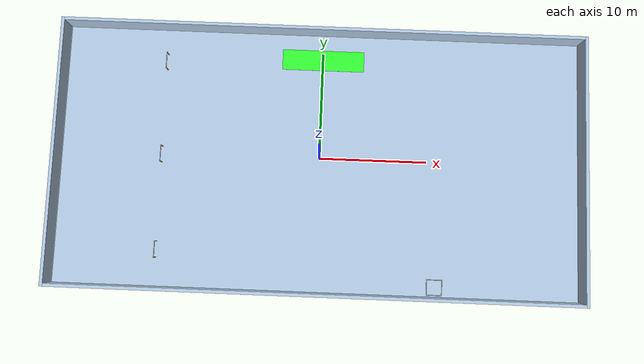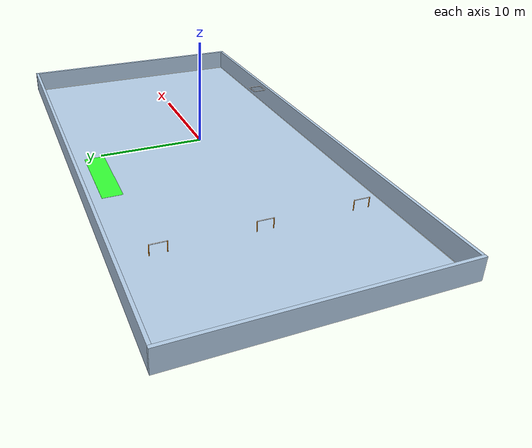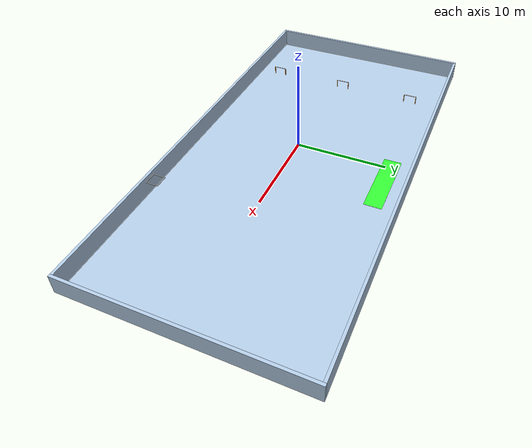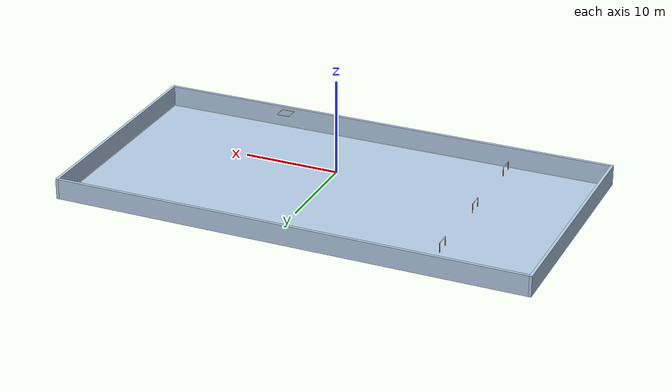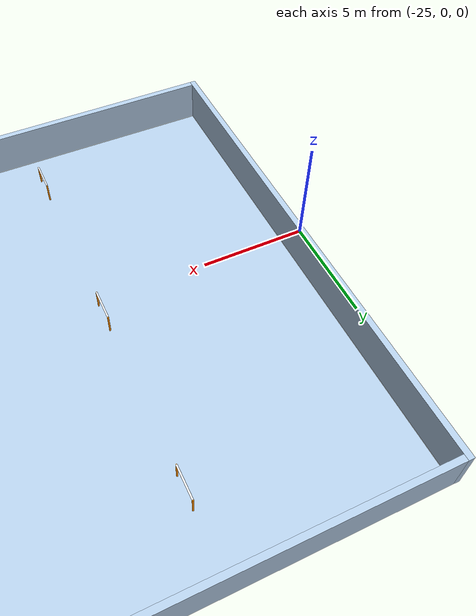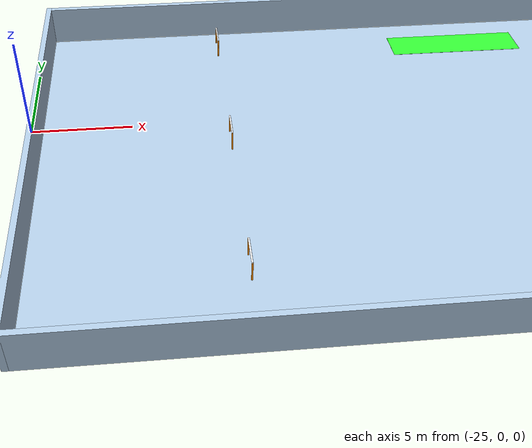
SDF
<sdf version="1.8">
 <world name="pool_world">
  <plugin filename="gz-sim-physics-system" name="gz::sim::systems::Physics"/>
  <plugin filename="gz-sim-user-commands-system" name="gz::sim::systems::UserCommands"/>
  <plugin filename="gz-sim-scene-broadcaster-system" name="gz::sim::systems::SceneBroadcaster"/>
  <plugin filename="gz-sim-sensors-system" name="gz::sim::systems::Sensors">
   <render_engine>ogre2</render_engine>
  </plugin>
  <plugin filename="gz-sim-imu-system" name="gz::sim::systems::Imu"/>
  <gravity>0 0 -9.81</gravity>
  <magnetic_field>6e-6 2e-5 -4e-5</magnetic_field>
  <atmosphere type="adiabatic"/>
  <scene><ambient>0.4 0.4 0.45 1</ambient><background>0.85 0.9 1 1</background><shadows>true</shadows></scene>
  <physics name="dart" type="ignition-physics-dartsim">
   <max_step_size>0.001</max_step_size>
   <real_time_factor>1.0</real_time_factor>
   <real_time_update_rate>1000</real_time_update_rate>
  </physics>
  <include><uri>https://fuel.gazebosim.org/1.0/OpenRobotics/models/Sun</uri></include>
  <model name="pool_structure">
   <static>true</static>
   <pose>0 0 -2.2 0 0 0</pose>
   <include><uri>model://pool_ground25</uri></include>
   <link name="wall_x_pos">
    <pose>25.15 0 1.1 0 0 0</pose>
    <collision name="col"><geometry><box><size>0.3 25.6 2.2</size></box></geometry></collision>
    <visual name="vis">
     <geometry><box><size>0.3 25.6 2.2</size></box></geometry>
     <material>
      <ambient>0.7 0.8 0.9 1</ambient>
      <diffuse>0.7 0.8 0.9 1</diffuse>
      <specular>0.3 0.3 0.3 1</specular>
      <emissive>0 0 0 1</emissive>
     </material>
    </visual>
   </link>
   <link name="wall_x_neg">
    <pose>-25.15 0 1.1 0 0 0</pose>
    <collision name="col"><geometry><box><size>0.3 25.6 2.2</size></box></geometry></collision>
    <visual name="vis">
     <geometry><box><size>0.3 25.6 2.2</size></box></geometry>
     <material>
      <ambient>0.7 0.8 0.9 1</ambient>
      <diffuse>0.7 0.8 0.9 1</diffuse>
      <specular>0.3 0.3 0.3 1</specular>
      <emissive>0 0 0 1</emissive>
     </material>
    </visual>
   </link>
   <link name="wall_y_pos">
    <pose>0 12.65 1.1 0 0 0</pose>
    <collision name="col"><geometry><box><size>50 0.3 2.2</size></box></geometry></collision>
    <visual name="vis">
     <geometry><box><size>50 0.3 2.2</size></box></geometry>
     <material>
      <ambient>0.7 0.8 0.9 1</ambient>
      <diffuse>0.7 0.8 0.9 1</diffuse>
      <specular>0.3 0.3 0.3 1</specular>
      <emissive>0 0 0 1</emissive>
     </material>
    </visual>
   </link>
   <link name="wall_y_neg">
    <pose>0 -12.65 1.1 0 0 0</pose>
    <collision name="col"><geometry><box><size>50 0.3 2.2</size></box></geometry></collision>
    <visual name="vis">
     <geometry><box><size>50 0.3 2.2</size></box></geometry>
     <material>
      <ambient>0.7 0.8 0.9 1</ambient>
      <diffuse>0.7 0.8 0.9 1</diffuse>
      <specular>0.3 0.3 0.3 1</specular>
      <emissive>0 0 0 1</emissive>
     </material>
    </visual>
   </link>
  </model>
  <plugin filename="gz-sim-buoyancy-system" name="gz::sim::systems::Buoyancy">
   <graded_buoyancy>
    <default_density>1000</default_density>
    <density_change><above_depth>0</above_depth><density>1.0</density></density_change>
   </graded_buoyancy>
   <enable>bluerov2_heavy</enable>
  </plugin>
  <include>
   <uri>model://q_gate</uri>
   <name>q_gate0</name>
   <pose>-15 -9 -0.2 0 0 1.5708</pose>
   <static>1</static>
  </include>
  <include>
   <uri>model://q_gate</uri>
   <name>q_gate1</name>
   <pose>-15 0 -0.2 0 0 1.5708</pose>
   <static>1</static>
  </include>
  <include>
   <uri>model://q_gate</uri>
   <name>q_gate2</name>
   <pose>-15 9 -0.2 0 0 1.5708</pose>
   <static>1</static>
  </include>
  <include><uri>model://starting_zone</uri><pose>11 -11.5 -0.2 0 0 0</pose><static>1</static></include>
  <include><uri>model://green_mat</uri><pose>0 10 -2.2 0 -0 0</pose><static>1</static></include>
 </world>
</sdf>

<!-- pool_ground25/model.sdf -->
<sdf version="1.7">
  <model name="pool_ground25">
    <static>true</static>

    <link name="pool_floor">
      <collision name="collision">
        <geometry>
          <plane>
            <normal>0 0 1</normal>
            <size>50 25</size>
          </plane>
        </geometry>
        <surface>
          <contact>
            <collide_bitmask>0x01</collide_bitmask>
          </contact>
          <friction>
            <ode>
              <mu>0.8</mu>
              <mu2>0.8</mu2>
            </ode>
          </friction>
        </surface>
      </collision>

      <visual name="visual">
        <geometry>
          <plane>
            <normal>0 0 1</normal>
            <size>50 25</size>
          </plane>
        </geometry>
        <material>
          <!-- Direct texture approach -->
          <ambient>0.7 0.8 0.9 1</ambient>
          <diffuse>0.7 0.8 0.9 1</diffuse>
          <specular>0.3 0.3 0.3 1</specular>
          <emissive>0 0 0 1</emissive>
          <pbr>
            <metal>
              <albedo_map>model://pool_ground25/materials/textures/pool_lanes.png</albedo_map>
            </metal>
          </pbr>
        </material>
      </visual>
    </link>
  </model>
</sdf>

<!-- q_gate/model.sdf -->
<sdf version="1.7">

  <!-- Qualification Gate model (static) -->
  <model name="qualification_gate">
    <static>1</static>

    <!-- Top bar (lies along X, centered at z=0 surface) -->
    <link name="top_bar">
      <pose>0 0 0 0 0 0</pose>
      <inertial>
        <mass>1.0</mass>
        <inertia>
          <ixx>0.01</ixx><ixy>0</ixy><ixz>0</ixz>
          <iyy>0.01</iyy><iyz>0</iyz><izz>0.01</izz>
        </inertia>
      </inertial>

      <visual name="top_bar_visual">
        <pose>0 0 0 0 1.5708 0</pose>
        <geometry>
          <cylinder>
            <radius>0.04</radius>
            <length>1.5</length> <!-- length along X -->
          </cylinder>
        </geometry>
        <material>
          <ambient>1 1 1 1</ambient>
          <diffuse>1 1 1 1</diffuse>
          <specular>0.1 0.1 0.1 1</specular>
          <emissive>0 0 0 1</emissive>
        </material>
        <cast_shadows>1</cast_shadows>
      </visual>

      <collision name="top_bar_collision">
        <pose>0 0 0 0 1.5708 0</pose>
        <geometry>
          <cylinder>
            <radius>0.04</radius>
            <length>1.5</length> <!-- length along X -->
          </cylinder>
        </geometry>
        <surface>
          <contact>
            <collide_without_contact>0</collide_without_contact>
          </contact>
        </surface>
      </collision>
    </link>

    <!-- Left vertical post (port) -->
    <link name="post_left">
      <!-- center of cylinder is half the length below surface; cylinder length = 1.0 m -->
      <pose>-0.75 0 -0.5 0 0 0</pose>
      <inertial>
        <mass>0.5</mass>
        <inertia>
          <ixx>0.01</ixx><ixy>0</ixy><ixz>0</ixz>
          <iyy>0.01</iyy><iyz>0</iyz><izz>0.01</izz>
        </inertia>
      </inertial>

      <visual name="post_left_visual">
        <pose>0 0 0 0 0 0</pose>
        <geometry>
          <cylinder>
            <radius>0.04</radius>
            <length>1.0</length> <!-- depth (downwards) -->
          </cylinder>
        </geometry>
        <material>
          <ambient>1 0.55 0 1</ambient>
          <diffuse>1 0.55 0 1</diffuse>
          <specular>0.1 0.1 0.1 1</specular>
          <emissive>0 0 0 1</emissive>
        </material>
        <cast_shadows>1</cast_shadows>
      </visual>

      <collision name="post_left_collision">
        <pose>0 0 0 0 0 0</pose>
        <geometry>
          <cylinder>
            <radius>0.04</radius>
            <length>1.0</length>
          </cylinder>
        </geometry>
        <surface>
          <contact>
            <collide_without_contact>0</collide_without_contact>
          </contact>
        </surface>
      </collision>
    </link>

    <!-- Right vertical post (starboard) -->
    <link name="post_right">
      <pose>0.75 0 -0.5 0 0 0</pose>
      <inertial>
        <mass>0.5</mass>
        <inertia>
          <ixx>0.01</ixx><ixy>0</ixy><ixz>0</ixz>
          <iyy>0.01</iyy><iyz>0</iyz><izz>0.01</izz>
        </inertia>
      </inertial>

      <visual name="post_right_visual">
        <pose>0 0 0 0 0 0</pose>
        <geometry>
          <cylinder>
            <radius>0.04</radius>
            <length>1.0</length>
          </cylinder>
        </geometry>
        <material>
          <ambient>1 0.55 0 1</ambient>
          <diffuse>1 0.55 0 1</diffuse>
          <specular>0.1 0.1 0.1 1</specular>
          <emissive>0 0 0 1</emissive>
        </material>
        <cast_shadows>1</cast_shadows>
      </visual>

      <collision name="post_right_collision">
        <pose>0 0 0 0 0 0</pose>
        <geometry>
          <cylinder>
            <radius>0.04</radius>
            <length>1.0</length>
          </cylinder>
        </geometry>
        <surface>
          <contact>
            <collide_without_contact>0</collide_without_contact>
          </contact>
        </surface>
      </collision>
    </link>

    <!-- Fixed joints to hold posts to top_bar -->
    <joint name="top_left_fixed" type="fixed">
      <parent>top_bar</parent>
      <child>post_left</child>
      <pose>-0.75 0 0 0 0 0</pose>
    </joint>

    <joint name="top_right_fixed" type="fixed">
      <parent>top_bar</parent>
      <child>post_right</child>
      <pose>0.75 0 0 0 0 0</pose>
    </joint>

  </model>

</sdf>

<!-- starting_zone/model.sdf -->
<sdf version="1.7">

  <!-- Starting zone (four white posts forming a 1.4 m x 1.4 m square) -->
  <model name="starting_zone">
    <pose>0 0 0 0 0 0</pose>
    <static>1</static>

    <link name="post_front_left">
      <pose>-0.7 0 0 1.5708 0 0</pose>
      <visual name="visual">
        <geometry>
          <cylinder>
            <radius>0.04</radius>
            <length>1.4</length>
          </cylinder>
        </geometry>
        <material>
          <ambient>1 1 1 1</ambient>
          <diffuse>1 1 1 1</diffuse>
        </material>
      </visual>
    </link>

    <link name="post_front_right">
      <pose>0.7 0 0 1.5708 0 0</pose>
      <visual name="visual">
        <geometry>
          <cylinder>
            <radius>0.04</radius>
            <length>1.4</length>
          </cylinder>
        </geometry>
        <material>
          <ambient>1 1 1 1</ambient>
          <diffuse>1 1 1 1</diffuse>
        </material>
      </visual>
    </link>

    <link name="post_back_left">
      <pose>0 -0.7 0 0 1.5708 0</pose>
      <visual name="visual">
        <geometry>
          <cylinder>
            <radius>0.04</radius>
            <length>1.4</length>
          </cylinder>
        </geometry>
        <material>
          <ambient>1 1 1 1</ambient>
          <diffuse>1 1 1 1</diffuse>
        </material>
      </visual>
    </link>

    <link name="post_back_right">
      <pose>0 0.7 0 0 1.5708 0</pose>
      <visual name="visual">
        <geometry>
          <cylinder>
            <radius>0.04</radius>
            <length>1.4</length>
          </cylinder>
        </geometry>
        <material>
          <ambient>1 1 1 1</ambient>
          <diffuse>1 1 1 1</diffuse>
        </material>
      </visual>
    </link>
  </model>

</sdf>

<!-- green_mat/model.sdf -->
<sdf version='1.7'>
  <model name='green_mat'>
    <link name='link_1'>
      <inertial>
        <mass>1</mass>
        <inertia>
          <ixx>0.166667</ixx>
          <ixy>0</ixy>
          <ixz>0</ixz>
          <iyy>0.166667</iyy>
          <iyz>0</iyz>
          <izz>0.166667</izz>
        </inertia>
        <pose>0 0 0 0 -0 0</pose>
      </inertial>
      <pose>0 0 0 0 -0 0</pose>
      <gravity>1</gravity>
      <self_collide>0</self_collide>
      <kinematic>0</kinematic>
      <enable_wind>0</enable_wind>
      <visual name='visual'>
        <pose>0 0 0 0 -0 0</pose>
        <geometry>
          <box>
            <size>8 2 0.01</size>
          </box>
        </geometry>
        <material>
          <ambient>0.1 0.5 0.1 1</ambient>
          <diffuse>0.2 1 0.2 1</diffuse>
          <specular>0.01 0.01 0.01 1</specular>
          <emissive>0 0 0 1</emissive>
        </material>
        <transparency>0</transparency>
        <cast_shadows>1</cast_shadows>
      </visual>
      <collision name='collision'>
        <laser_retro>0</laser_retro>
        <max_contacts>10</max_contacts>
        <pose>0 0 0 0 -0 0</pose>
        <geometry>
          <box>
            <size>8 2 0.01</size>
          </box>
        </geometry>
        <surface>
          <friction>
            <ode>
              <mu>1</mu>
              <mu2>1</mu2>
              <fdir1>0 0 0</fdir1>
              <slip1>0</slip1>
              <slip2>0</slip2>
            </ode>
            <torsional>
              <coefficient>1</coefficient>
              <patch_radius>0</patch_radius>
              <surface_radius>0</surface_radius>
              <use_patch_radius>1</use_patch_radius>
              <ode>
                <slip>0</slip>
              </ode>
            </torsional>
          </friction>
          <bounce>
            <restitution_coefficient>0</restitution_coefficient>
            <threshold>1e+06</threshold>
          </bounce>
          <contact>
            <collide_without_contact>0</collide_without_contact>
            <collide_without_contact_bitmask>1</collide_without_contact_bitmask>
            <collide_bitmask>1</collide_bitmask>
            <ode>
              <soft_cfm>0</soft_cfm>
              <soft_erp>0.2</soft_erp>
              <kp>1e+13</kp>
              <kd>1</kd>
              <max_vel>0.01</max_vel>
              <min_depth>0</min_depth>
            </ode>
            <bullet>
              <split_impulse>1</split_impulse>
              <split_impulse_penetration_threshold>-0.01</split_impulse_penetration_threshold>
              <soft_cfm>0</soft_cfm>
              <soft_erp>0.2</soft_erp>
              <kp>1e+13</kp>
              <kd>1</kd>
            </bullet>
          </contact>
        </surface>
      </collision>
    </link>
    <static>1</static>
    <allow_auto_disable>1</allow_auto_disable>
  </model>
</sdf>
